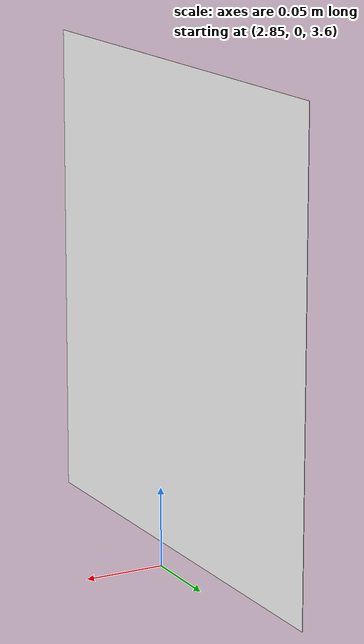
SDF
<?xml version="1.0" ?>
<sdf version="1.9">
<model name="aruco_marker">
<!-- Set static to false so that its pose can be updated -->
<static>false</static>
<link name="marker_link">
<!-- Initial pose in the world -->
<pose>2.84 0 3.758 0 -1.5708 0</pose>
<!-- Disable gravity if you want it to just follow your commands -->
<gravity>false</gravity>
<visual name="marker_visual">
<geometry>
<plane>
<normal>0 0 1</normal>
<size>0.3 0.3</size>
</plane>
</geometry>
<material>
<diffuse>1 1 1 1</diffuse>
<specular>0.4 0.4 0.4 1</specular>
<pbr>
<metal>
<albedo_map>/mpc/new/tracktor-beam/src/arucotag.png</albedo_map>
</metal>
</pbr>
</material>
</visual>
</link>
</model>
</sdf>
